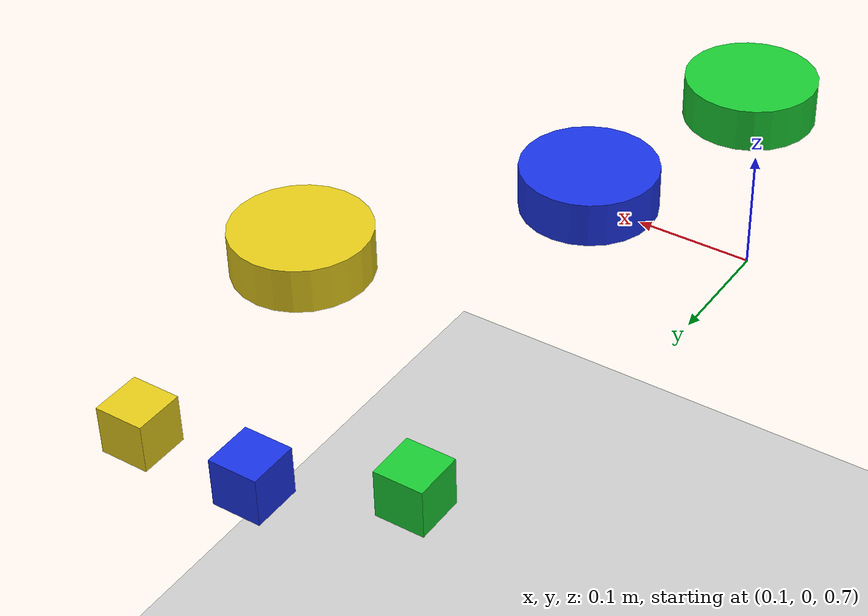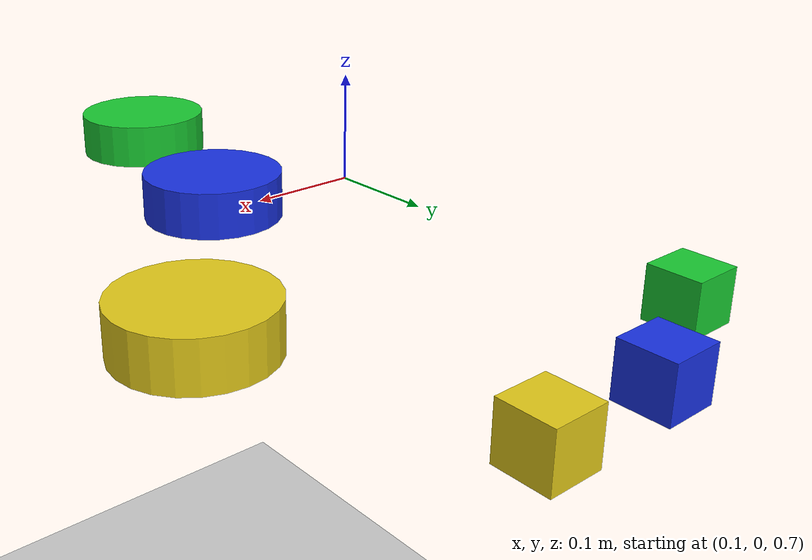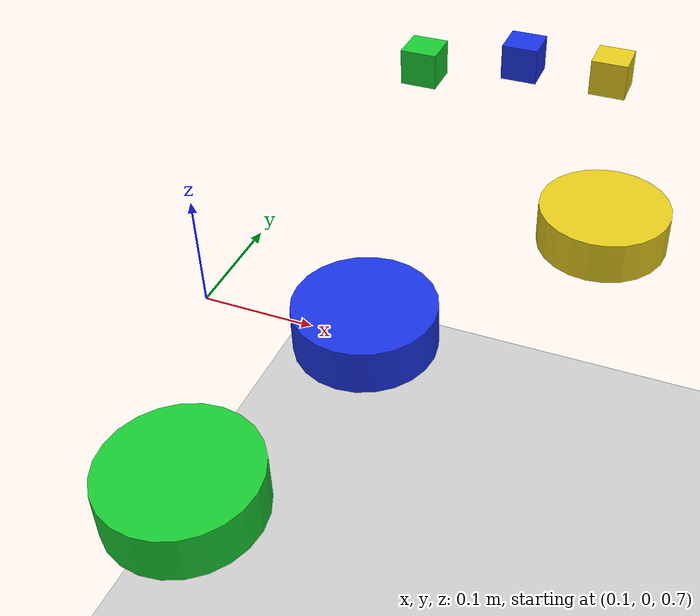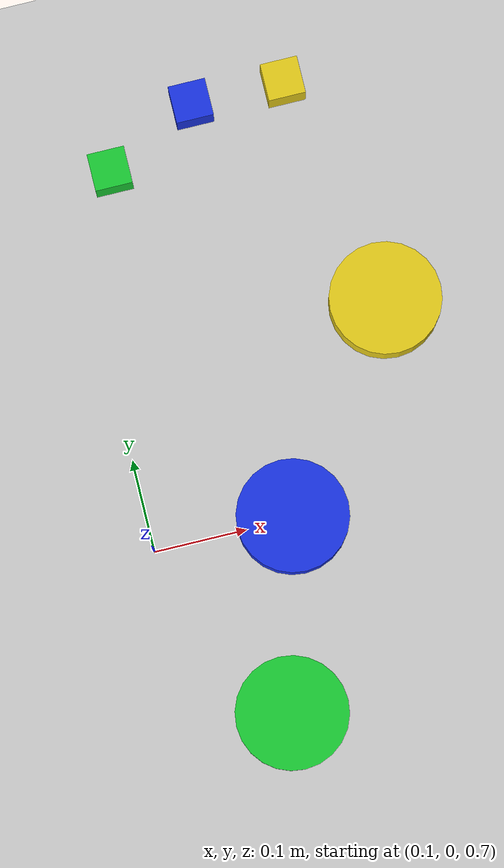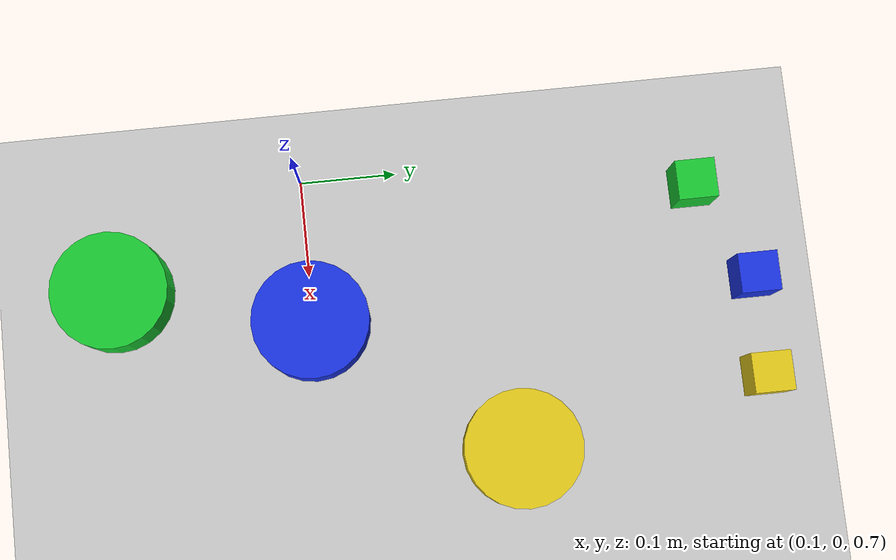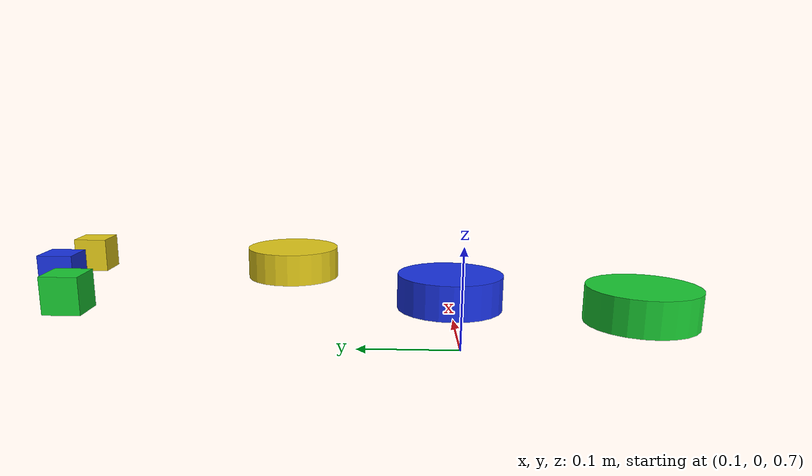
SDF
<sdf version="1.8">
 <world name="tabletop">
  <gravity>0 0 -9.8</gravity>
  <plugin filename="gz-sim-physics-system" name="gz::sim::systems::Physics"/>
  <plugin filename="gz-sim-user-commands-system" name="gz::sim::systems::UserCommands"/>
  <plugin filename="gz-sim-scene-broadcaster-system" name="gz::sim::systems::SceneBroadcaster"/>
  <plugin filename="gz-sim-sensors-system" name="gz::sim::systems::Sensors">
   <render_engine>ogre2</render_engine>
  </plugin>
  <model name="ground_plane">
   <static>true</static>
   <link name="link">
    <collision name="collision">
     <geometry><plane><normal>0 0 1</normal><size>100 100</size></plane></geometry>
    </collision>
    <visual name="visual">
     <geometry><plane><normal>0 0 1</normal><size>100 100</size></plane></geometry>
     <material><ambient>0.8 0.8 0.8 1</ambient><diffuse>0.8 0.8 0.8 1</diffuse></material>
    </visual>
   </link>
  </model>
  <light name="sun" type="directional">
   <pose>0 0 10 0 -0.5 0</pose>
   <diffuse>1 1 1 1</diffuse>
   <specular>0.5 0.5 0.5 1</specular>
   <direction>-0.5 0.5 -1</direction>
  </light>
  <model name="cube_yellow">
   <pose>0.35 0.45 0.74 0 0 0</pose>
   <link name="link">
    <inertial>
     <mass>0.05</mass>
     <inertia>
      <ixx>0.0000133</ixx>
      <iyy>0.0000133</iyy>
      <izz>0.0000133</izz>
      <ixy>0</ixy>
      <ixz>0</ixz>
      <iyz>0</iyz>
     </inertia>
    </inertial>
    <collision name="collision"><geometry><box><size>0.04 0.04 0.04</size></box></geometry></collision>
    <visual name="visual">
     <geometry><box><size>0.04 0.04 0.04</size></box></geometry>
     <material>
      <ambient>0.9 0.8 0.1 1</ambient>
      <diffuse>0.9 0.8 0.1 1</diffuse>
      <specular>0.2 0.2 0.2 1</specular>
     </material>
    </visual>
   </link>
  </model>
  <model name="cube_green">
   <pose>0.15 0.40 0.74 0 0 0</pose>
   <link name="link">
    <inertial>
     <mass>0.05</mass>
     <inertia>
      <ixx>0.0000133</ixx>
      <iyy>0.0000133</iyy>
      <izz>0.0000133</izz>
      <ixy>0</ixy>
      <ixz>0</ixz>
      <iyz>0</iyz>
     </inertia>
    </inertial>
    <collision name="collision"><geometry><box><size>0.04 0.04 0.04</size></box></geometry></collision>
    <visual name="visual">
     <geometry><box><size>0.04 0.04 0.04</size></box></geometry>
     <material>
      <ambient>0.1 0.8 0.2 1</ambient>
      <diffuse>0.1 0.8 0.2 1</diffuse>
      <specular>0.2 0.2 0.2 1</specular>
     </material>
    </visual>
   </link>
  </model>
  <model name="cube_blue">
   <pose>0.25 0.45 0.74 0 0 0</pose>
   <link name="link">
    <inertial>
     <mass>0.05</mass>
     <inertia>
      <ixx>0.0000133</ixx>
      <iyy>0.0000133</iyy>
      <izz>0.0000133</izz>
      <ixy>0</ixy>
      <ixz>0</ixz>
      <iyz>0</iyz>
     </inertia>
    </inertial>
    <collision name="collision"><geometry><box><size>0.04 0.04 0.04</size></box></geometry></collision>
    <visual name="visual">
     <geometry><box><size>0.04 0.04 0.04</size></box></geometry>
     <material>
      <ambient>0.1 0.2 0.9 1</ambient>
      <diffuse>0.1 0.2 0.9 1</diffuse>
      <specular>0.2 0.2 0.2 1</specular>
     </material>
    </visual>
   </link>
  </model>
  <model name="bowl_green">
   <pose>0.20 -0.2 0.72 0 0 0</pose>
   <static>true</static>
   <link name="link">
    <collision name="collision">
     <geometry><cylinder><radius>0.06</radius><length>0.04</length></cylinder></geometry>
    </collision>
    <visual name="visual">
     <geometry><cylinder><radius>0.06</radius><length>0.04</length></cylinder></geometry>
     <material><ambient>0.1 0.8 0.2 1</ambient><diffuse>0.1 0.8 0.2 1</diffuse></material>
    </visual>
   </link>
  </model>
  <model name="bowl_yellow">
   <pose>0.4 0.2 0.72 0 0 0</pose>
   <static>true</static>
   <link name="link">
    <collision name="collision">
     <geometry><cylinder><radius>0.06</radius><length>0.04</length></cylinder></geometry>
    </collision>
    <visual name="visual">
     <geometry><cylinder><radius>0.06</radius><length>0.04</length></cylinder></geometry>
     <material><ambient>0.9 0.8 0.1 1</ambient><diffuse>0.9 0.8 0.1 1</diffuse></material>
    </visual>
   </link>
  </model>
  <model name="bowl_blue">
   <pose>0.25 0.0 0.72 0 0 0</pose>
   <static>true</static>
   <link name="link">
    <collision name="collision">
     <geometry><cylinder><radius>0.06</radius><length>0.04</length></cylinder></geometry>
    </collision>
    <visual name="visual">
     <geometry><cylinder><radius>0.06</radius><length>0.04</length></cylinder></geometry>
     <material><ambient>0.1 0.2 0.9 1</ambient><diffuse>0.1 0.2 0.9 1</diffuse></material>
    </visual>
   </link>
  </model>
 </world>
</sdf>
